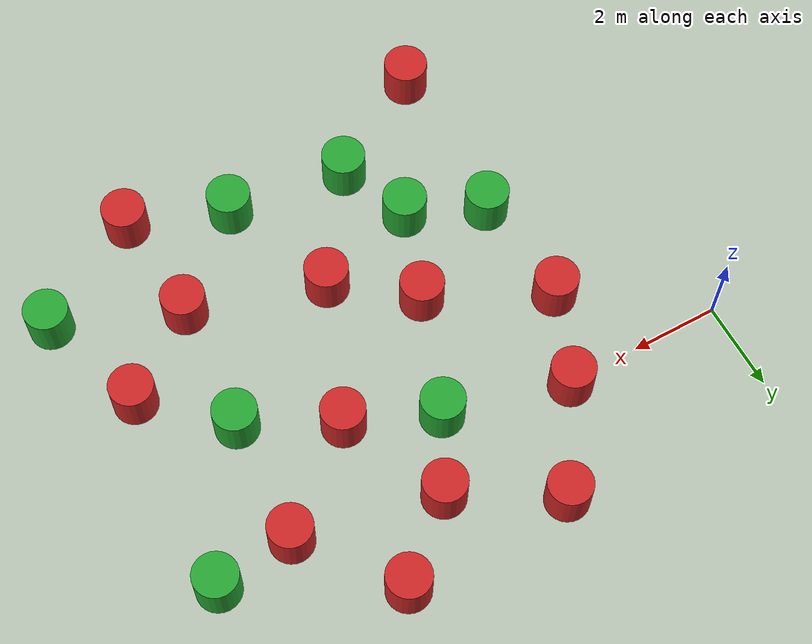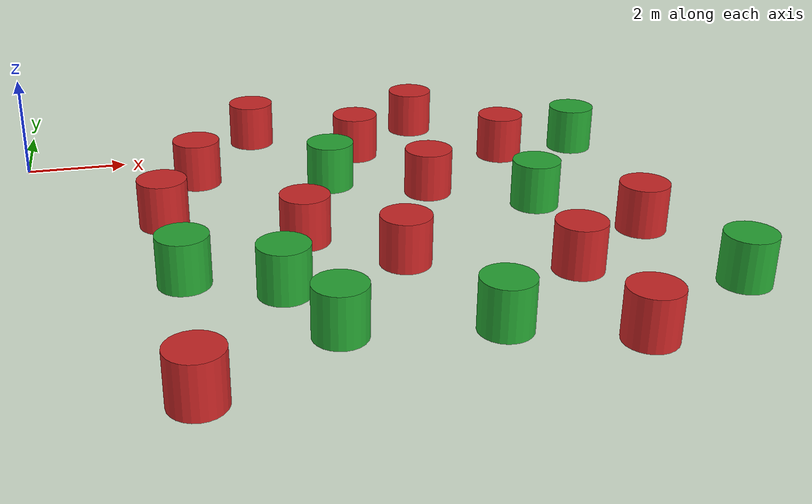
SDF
<sdf version="1.7">
 <model name="Astar_Dij_test.world">
  <link name="link_0">
   <inertial>
    <mass>20</mass>
    <inertia><ixx>2.91667</ixx><ixy>0</ixy><ixz>0</ixz><iyy>2.91667</iyy><iyz>0</iyz><izz>2.5</izz></inertia>
   </inertial>
   <pose>3.54109 -0.119892 0 0 -0 0</pose>
   <visual name="visual">
    <geometry><cylinder><radius>0.5</radius><length>1</length></cylinder></geometry>
    <material>
     <lighting>1</lighting>
     <script><uri>file://media/materials/scripts/gazebo.material</uri><name>Gazebo/Red</name></script>
     <shader type="pixel"><normal_map>__default__</normal_map></shader>
     <ambient>1 0 0 1</ambient>
     <diffuse>1 0 0 1</diffuse>
     <specular>0.1 0.1 0.1 1</specular>
     <emissive>0 0 0 1</emissive>
    </material>
   </visual>
   <collision name="collision">
    <geometry><cylinder><radius>0.5</radius><length>1</length></cylinder></geometry>
    <surface>
     <friction>
      <ode><mu>1</mu><mu2>1</mu2><fdir1>0 0 0</fdir1><slip1>0</slip1><slip2>0</slip2></ode>
      <torsional>
       <coefficient>1</coefficient>
       <patch_radius>0</patch_radius>
       <surface_radius>0</surface_radius>
       <use_patch_radius>1</use_patch_radius>
       <ode><slip>0</slip></ode>
      </torsional>
     </friction>
     <bounce><restitution_coefficient>0</restitution_coefficient><threshold>1e+06</threshold></bounce>
     <contact>
      <collide_without_contact>0</collide_without_contact>
      <collide_without_contact_bitmask>1</collide_without_contact_bitmask>
      <collide_bitmask>1</collide_bitmask>
      <ode>
       <soft_cfm>0</soft_cfm>
       <soft_erp>0.2</soft_erp>
       <kp>1e+13</kp>
       <kd>1</kd>
       <max_vel>0.01</max_vel>
       <min_depth>0</min_depth>
      </ode>
      <bullet>
       <split_impulse>1</split_impulse>
       <split_impulse_penetration_threshold>-0.01</split_impulse_penetration_threshold>
       <soft_cfm>0</soft_cfm>
       <soft_erp>0.2</soft_erp>
       <kp>1e+13</kp>
       <kd>1</kd>
      </bullet>
     </contact>
    </surface>
   </collision>
  </link>
  <link name="link_0_clone">
   <inertial>
    <mass>20</mass>
    <inertia><ixx>2.91667</ixx><ixy>0</ixy><ixz>0</ixz><iyy>2.91667</iyy><iyz>0</iyz><izz>2.5</izz></inertia>
   </inertial>
   <pose>5.36627 -3.50187 0 0 -0 0</pose>
   <visual name="visual">
    <geometry><cylinder><radius>0.5</radius><length>1</length></cylinder></geometry>
    <material>
     <lighting>1</lighting>
     <script><uri>file://media/materials/scripts/gazebo.material</uri><name>Gazebo/Red</name></script>
     <shader type="pixel"><normal_map>__default__</normal_map></shader>
     <ambient>1 0 0 1</ambient>
     <diffuse>1 0 0 1</diffuse>
     <specular>0.1 0.1 0.1 1</specular>
     <emissive>0 0 0 1</emissive>
    </material>
   </visual>
   <collision name="collision">
    <geometry><cylinder><radius>0.5</radius><length>1</length></cylinder></geometry>
    <surface>
     <friction>
      <ode><mu>1</mu><mu2>1</mu2><fdir1>0 0 0</fdir1><slip1>0</slip1><slip2>0</slip2></ode>
      <torsional>
       <coefficient>1</coefficient>
       <patch_radius>0</patch_radius>
       <surface_radius>0</surface_radius>
       <use_patch_radius>1</use_patch_radius>
       <ode><slip>0</slip></ode>
      </torsional>
     </friction>
     <bounce><restitution_coefficient>0</restitution_coefficient><threshold>1e+06</threshold></bounce>
     <contact>
      <collide_without_contact>0</collide_without_contact>
      <collide_without_contact_bitmask>1</collide_without_contact_bitmask>
      <collide_bitmask>1</collide_bitmask>
      <ode>
       <soft_cfm>0</soft_cfm>
       <soft_erp>0.2</soft_erp>
       <kp>1e+13</kp>
       <kd>1</kd>
       <max_vel>0.01</max_vel>
       <min_depth>0</min_depth>
      </ode>
      <bullet>
       <split_impulse>1</split_impulse>
       <split_impulse_penetration_threshold>-0.01</split_impulse_penetration_threshold>
       <soft_cfm>0</soft_cfm>
       <soft_erp>0.2</soft_erp>
       <kp>1e+13</kp>
       <kd>1</kd>
      </bullet>
     </contact>
    </surface>
   </collision>
  </link>
  <link name="link_0_clone_0">
   <inertial>
    <mass>20</mass>
    <inertia><ixx>2.91667</ixx><ixy>0</ixy><ixz>0</ixz><iyy>2.91667</iyy><iyz>0</iyz><izz>2.5</izz></inertia>
   </inertial>
   <pose>7.05149 -4.8226 0 0 -0 0</pose>
   <visual name="visual">
    <geometry><cylinder><radius>0.5</radius><length>1</length></cylinder></geometry>
    <material>
     <lighting>1</lighting>
     <script><uri>file://media/materials/scripts/gazebo.material</uri><name>Gazebo/Red</name></script>
     <shader type="pixel"><normal_map>__default__</normal_map></shader>
     <ambient>1 0 0 1</ambient>
     <diffuse>1 0 0 1</diffuse>
     <specular>0.1 0.1 0.1 1</specular>
     <emissive>0 0 0 1</emissive>
    </material>
   </visual>
   <collision name="collision">
    <geometry><cylinder><radius>0.5</radius><length>1</length></cylinder></geometry>
    <surface>
     <friction>
      <ode><mu>1</mu><mu2>1</mu2><fdir1>0 0 0</fdir1><slip1>0</slip1><slip2>0</slip2></ode>
      <torsional>
       <coefficient>1</coefficient>
       <patch_radius>0</patch_radius>
       <surface_radius>0</surface_radius>
       <use_patch_radius>1</use_patch_radius>
       <ode><slip>0</slip></ode>
      </torsional>
     </friction>
     <bounce><restitution_coefficient>0</restitution_coefficient><threshold>1e+06</threshold></bounce>
     <contact>
      <collide_without_contact>0</collide_without_contact>
      <collide_without_contact_bitmask>1</collide_without_contact_bitmask>
      <collide_bitmask>1</collide_bitmask>
      <ode>
       <soft_cfm>0</soft_cfm>
       <soft_erp>0.2</soft_erp>
       <kp>1e+13</kp>
       <kd>1</kd>
       <max_vel>0.01</max_vel>
       <min_depth>0</min_depth>
      </ode>
      <bullet>
       <split_impulse>1</split_impulse>
       <split_impulse_penetration_threshold>-0.01</split_impulse_penetration_threshold>
       <soft_cfm>0</soft_cfm>
       <soft_erp>0.2</soft_erp>
       <kp>1e+13</kp>
       <kd>1</kd>
      </bullet>
     </contact>
    </surface>
   </collision>
  </link>
  <link name="link_0_clone_1">
   <inertial>
    <mass>20</mass>
    <inertia><ixx>2.91667</ixx><ixy>0</ixy><ixz>0</ixz><iyy>2.91667</iyy><iyz>0</iyz><izz>2.5</izz></inertia>
   </inertial>
   <pose>8.3259 -1.65884 0 0 -0 0</pose>
   <visual name="visual">
    <geometry><cylinder><radius>0.5</radius><length>1</length></cylinder></geometry>
    <material>
     <lighting>1</lighting>
     <script><uri>file://media/materials/scripts/gazebo.material</uri><name>Gazebo/Red</name></script>
     <shader type="pixel"><normal_map>__default__</normal_map></shader>
     <ambient>1 0 0 1</ambient>
     <diffuse>1 0 0 1</diffuse>
     <specular>0.1 0.1 0.1 1</specular>
     <emissive>0 0 0 1</emissive>
    </material>
   </visual>
   <collision name="collision">
    <geometry><cylinder><radius>0.5</radius><length>1</length></cylinder></geometry>
    <surface>
     <friction>
      <ode><mu>1</mu><mu2>1</mu2><fdir1>0 0 0</fdir1><slip1>0</slip1><slip2>0</slip2></ode>
      <torsional>
       <coefficient>1</coefficient>
       <patch_radius>0</patch_radius>
       <surface_radius>0</surface_radius>
       <use_patch_radius>1</use_patch_radius>
       <ode><slip>0</slip></ode>
      </torsional>
     </friction>
     <bounce><restitution_coefficient>0</restitution_coefficient><threshold>1e+06</threshold></bounce>
     <contact>
      <collide_without_contact>0</collide_without_contact>
      <collide_without_contact_bitmask>1</collide_without_contact_bitmask>
      <collide_bitmask>1</collide_bitmask>
      <ode>
       <soft_cfm>0</soft_cfm>
       <soft_erp>0.2</soft_erp>
       <kp>1e+13</kp>
       <kd>1</kd>
       <max_vel>0.01</max_vel>
       <min_depth>0</min_depth>
      </ode>
      <bullet>
       <split_impulse>1</split_impulse>
       <split_impulse_penetration_threshold>-0.01</split_impulse_penetration_threshold>
       <soft_cfm>0</soft_cfm>
       <soft_erp>0.2</soft_erp>
       <kp>1e+13</kp>
       <kd>1</kd>
      </bullet>
     </contact>
    </surface>
   </collision>
  </link>
  <link name="link_0_clone_10">
   <inertial>
    <mass>20</mass>
    <inertia><ixx>2.91667</ixx><ixy>0</ixy><ixz>0</ixz><iyy>2.91667</iyy><iyz>0</iyz><izz>2.5</izz></inertia>
   </inertial>
   <pose>12.0197 -4.31509 0 0 -0 0</pose>
   <visual name="visual">
    <geometry><cylinder><radius>0.5</radius><length>1</length></cylinder></geometry>
    <material>
     <lighting>1</lighting>
     <script><uri>file://media/materials/scripts/gazebo.material</uri><name>Gazebo/Red</name></script>
     <shader type="pixel"><normal_map>__default__</normal_map></shader>
     <ambient>1 0 0 1</ambient>
     <diffuse>1 0 0 1</diffuse>
     <specular>0.1 0.1 0.1 1</specular>
     <emissive>0 0 0 1</emissive>
    </material>
   </visual>
   <collision name="collision">
    <geometry><cylinder><radius>0.5</radius><length>1</length></cylinder></geometry>
    <surface>
     <friction>
      <ode><mu>1</mu><mu2>1</mu2><fdir1>0 0 0</fdir1><slip1>0</slip1><slip2>0</slip2></ode>
      <torsional>
       <coefficient>1</coefficient>
       <patch_radius>0</patch_radius>
       <surface_radius>0</surface_radius>
       <use_patch_radius>1</use_patch_radius>
       <ode><slip>0</slip></ode>
      </torsional>
     </friction>
     <bounce><restitution_coefficient>0</restitution_coefficient><threshold>1e+06</threshold></bounce>
     <contact>
      <collide_without_contact>0</collide_without_contact>
      <collide_without_contact_bitmask>1</collide_without_contact_bitmask>
      <collide_bitmask>1</collide_bitmask>
      <ode>
       <soft_cfm>0</soft_cfm>
       <soft_erp>0.2</soft_erp>
       <kp>1e+13</kp>
       <kd>1</kd>
       <max_vel>0.01</max_vel>
       <min_depth>0</min_depth>
      </ode>
      <bullet>
       <split_impulse>1</split_impulse>
       <split_impulse_penetration_threshold>-0.01</split_impulse_penetration_threshold>
       <soft_cfm>0</soft_cfm>
       <soft_erp>0.2</soft_erp>
       <kp>1e+13</kp>
       <kd>1</kd>
      </bullet>
     </contact>
    </surface>
   </collision>
  </link>
  <link name="link_0_clone_14">
   <inertial>
    <mass>20</mass>
    <inertia><ixx>2.91667</ixx><ixy>0</ixy><ixz>0</ixz><iyy>2.91667</iyy><iyz>0</iyz><izz>2.5</izz></inertia>
   </inertial>
   <pose>2.70846 -2.17544 0 0 -0 0</pose>
   <visual name="visual">
    <geometry><cylinder><radius>0.5</radius><length>1</length></cylinder></geometry>
    <material>
     <lighting>1</lighting>
     <script><uri>file://media/materials/scripts/gazebo.material</uri><name>Gazebo/Red</name></script>
     <shader type="pixel"><normal_map>__default__</normal_map></shader>
     <ambient>1 0 0 1</ambient>
     <diffuse>1 0 0 1</diffuse>
     <specular>0.1 0.1 0.1 1</specular>
     <emissive>0 0 0 1</emissive>
    </material>
   </visual>
   <collision name="collision">
    <geometry><cylinder><radius>0.5</radius><length>1</length></cylinder></geometry>
    <surface>
     <friction>
      <ode><mu>1</mu><mu2>1</mu2><fdir1>0 0 0</fdir1><slip1>0</slip1><slip2>0</slip2></ode>
      <torsional>
       <coefficient>1</coefficient>
       <patch_radius>0</patch_radius>
       <surface_radius>0</surface_radius>
       <use_patch_radius>1</use_patch_radius>
       <ode><slip>0</slip></ode>
      </torsional>
     </friction>
     <bounce><restitution_coefficient>0</restitution_coefficient><threshold>1e+06</threshold></bounce>
     <contact>
      <collide_without_contact>0</collide_without_contact>
      <collide_without_contact_bitmask>1</collide_without_contact_bitmask>
      <collide_bitmask>1</collide_bitmask>
      <ode>
       <soft_cfm>0</soft_cfm>
       <soft_erp>0.2</soft_erp>
       <kp>1e+13</kp>
       <kd>1</kd>
       <max_vel>0.01</max_vel>
       <min_depth>0</min_depth>
      </ode>
      <bullet>
       <split_impulse>1</split_impulse>
       <split_impulse_penetration_threshold>-0.01</split_impulse_penetration_threshold>
       <soft_cfm>0</soft_cfm>
       <soft_erp>0.2</soft_erp>
       <kp>1e+13</kp>
       <kd>1</kd>
      </bullet>
     </contact>
    </surface>
   </collision>
  </link>
  <link name="link_0_clone_17">
   <inertial>
    <mass>20</mass>
    <inertia><ixx>2.91667</ixx><ixy>0</ixy><ixz>0</ixz><iyy>2.91667</iyy><iyz>0</iyz><izz>2.5</izz></inertia>
   </inertial>
   <pose>2.87315 -8.73364 0 0 -0 0</pose>
   <visual name="visual">
    <geometry><cylinder><radius>0.5</radius><length>1</length></cylinder></geometry>
    <material>
     <lighting>1</lighting>
     <script><uri>file://media/materials/scripts/gazebo.material</uri><name>Gazebo/Red</name></script>
     <shader type="pixel"><normal_map>__default__</normal_map></shader>
     <ambient>1 0 0 1</ambient>
     <diffuse>1 0 0 1</diffuse>
     <specular>0.1 0.1 0.1 1</specular>
     <emissive>0 0 0 1</emissive>
    </material>
   </visual>
   <collision name="collision">
    <geometry><cylinder><radius>0.5</radius><length>1</length></cylinder></geometry>
    <surface>
     <friction>
      <ode><mu>1</mu><mu2>1</mu2><fdir1>0 0 0</fdir1><slip1>0</slip1><slip2>0</slip2></ode>
      <torsional>
       <coefficient>1</coefficient>
       <patch_radius>0</patch_radius>
       <surface_radius>0</surface_radius>
       <use_patch_radius>1</use_patch_radius>
       <ode><slip>0</slip></ode>
      </torsional>
     </friction>
     <bounce><restitution_coefficient>0</restitution_coefficient><threshold>1e+06</threshold></bounce>
     <contact>
      <collide_without_contact>0</collide_without_contact>
      <collide_without_contact_bitmask>1</collide_without_contact_bitmask>
      <collide_bitmask>1</collide_bitmask>
      <ode>
       <soft_cfm>0</soft_cfm>
       <soft_erp>0.2</soft_erp>
       <kp>1e+13</kp>
       <kd>1</kd>
       <max_vel>0.01</max_vel>
       <min_depth>0</min_depth>
      </ode>
      <bullet>
       <split_impulse>1</split_impulse>
       <split_impulse_penetration_threshold>-0.01</split_impulse_penetration_threshold>
       <soft_cfm>0</soft_cfm>
       <soft_erp>0.2</soft_erp>
       <kp>1e+13</kp>
       <kd>1</kd>
      </bullet>
     </contact>
    </surface>
   </collision>
  </link>
  <link name="link_0_clone_19">
   <inertial>
    <mass>20</mass>
    <inertia><ixx>2.91667</ixx><ixy>0</ixy><ixz>0</ixz><iyy>2.91667</iyy><iyz>0</iyz><izz>2.5</izz></inertia>
   </inertial>
   <pose>4.98594 2.10137 0 0 -0 0</pose>
   <visual name="visual">
    <geometry><cylinder><radius>0.5</radius><length>1</length></cylinder></geometry>
    <material>
     <lighting>1</lighting>
     <script><uri>file://media/materials/scripts/gazebo.material</uri><name>Gazebo/Red</name></script>
     <shader type="pixel"><normal_map>__default__</normal_map></shader>
     <ambient>1 0 0 1</ambient>
     <diffuse>1 0 0 1</diffuse>
     <specular>0.1 0.1 0.1 1</specular>
     <emissive>0 0 0 1</emissive>
    </material>
   </visual>
   <collision name="collision">
    <geometry><cylinder><radius>0.5</radius><length>1</length></cylinder></geometry>
    <surface>
     <friction>
      <ode><mu>1</mu><mu2>1</mu2><fdir1>0 0 0</fdir1><slip1>0</slip1><slip2>0</slip2></ode>
      <torsional>
       <coefficient>1</coefficient>
       <patch_radius>0</patch_radius>
       <surface_radius>0</surface_radius>
       <use_patch_radius>1</use_patch_radius>
       <ode><slip>0</slip></ode>
      </torsional>
     </friction>
     <bounce><restitution_coefficient>0</restitution_coefficient><threshold>1e+06</threshold></bounce>
     <contact>
      <collide_without_contact>0</collide_without_contact>
      <collide_without_contact_bitmask>1</collide_without_contact_bitmask>
      <collide_bitmask>1</collide_bitmask>
      <ode>
       <soft_cfm>0</soft_cfm>
       <soft_erp>0.2</soft_erp>
       <kp>1e+13</kp>
       <kd>1</kd>
       <max_vel>0.01</max_vel>
       <min_depth>0</min_depth>
      </ode>
      <bullet>
       <split_impulse>1</split_impulse>
       <split_impulse_penetration_threshold>-0.01</split_impulse_penetration_threshold>
       <soft_cfm>0</soft_cfm>
       <soft_erp>0.2</soft_erp>
       <kp>1e+13</kp>
       <kd>1</kd>
      </bullet>
     </contact>
    </surface>
   </collision>
  </link>
  <link name="link_0_clone_20">
   <inertial>
    <mass>20</mass>
    <inertia><ixx>2.91667</ixx><ixy>0</ixy><ixz>0</ixz><iyy>2.91667</iyy><iyz>0</iyz><izz>2.5</izz></inertia>
   </inertial>
   <pose>7.23174 0.796534 0 0 -0 0</pose>
   <visual name="visual">
    <geometry><cylinder><radius>0.5</radius><length>1</length></cylinder></geometry>
    <material>
     <lighting>1</lighting>
     <script><uri>file://media/materials/scripts/gazebo.material</uri><name>Gazebo/Red</name></script>
     <shader type="pixel"><normal_map>__default__</normal_map></shader>
     <ambient>1 0 0 1</ambient>
     <diffuse>1 0 0 1</diffuse>
     <specular>0.1 0.1 0.1 1</specular>
     <emissive>0 0 0 1</emissive>
    </material>
   </visual>
   <collision name="collision">
    <geometry><cylinder><radius>0.5</radius><length>1</length></cylinder></geometry>
    <surface>
     <friction>
      <ode><mu>1</mu><mu2>1</mu2><fdir1>0 0 0</fdir1><slip1>0</slip1><slip2>0</slip2></ode>
      <torsional>
       <coefficient>1</coefficient>
       <patch_radius>0</patch_radius>
       <surface_radius>0</surface_radius>
       <use_patch_radius>1</use_patch_radius>
       <ode><slip>0</slip></ode>
      </torsional>
     </friction>
     <bounce><restitution_coefficient>0</restitution_coefficient><threshold>1e+06</threshold></bounce>
     <contact>
      <collide_without_contact>0</collide_without_contact>
      <collide_without_contact_bitmask>1</collide_without_contact_bitmask>
      <collide_bitmask>1</collide_bitmask>
      <ode>
       <soft_cfm>0</soft_cfm>
       <soft_erp>0.2</soft_erp>
       <kp>1e+13</kp>
       <kd>1</kd>
       <max_vel>0.01</max_vel>
       <min_depth>0</min_depth>
      </ode>
      <bullet>
       <split_impulse>1</split_impulse>
       <split_impulse_penetration_threshold>-0.01</split_impulse_penetration_threshold>
       <soft_cfm>0</soft_cfm>
       <soft_erp>0.2</soft_erp>
       <kp>1e+13</kp>
       <kd>1</kd>
      </bullet>
     </contact>
    </surface>
   </collision>
  </link>
  <link name="link_0_clone_4">
   <inertial>
    <mass>20</mass>
    <inertia><ixx>2.91667</ixx><ixy>0</ixy><ixz>0</ixz><iyy>2.91667</iyy><iyz>0</iyz><izz>2.5</izz></inertia>
   </inertial>
   <pose>8.88155 2.22109 0 0 -0 0</pose>
   <visual name="visual">
    <geometry><cylinder><radius>0.5</radius><length>1</length></cylinder></geometry>
    <material>
     <lighting>1</lighting>
     <script><uri>file://media/materials/scripts/gazebo.material</uri><name>Gazebo/Red</name></script>
     <shader type="pixel"><normal_map>__default__</normal_map></shader>
     <ambient>1 0 0 1</ambient>
     <diffuse>1 0 0 1</diffuse>
     <specular>0.1 0.1 0.1 1</specular>
     <emissive>0 0 0 1</emissive>
    </material>
   </visual>
   <collision name="collision">
    <geometry><cylinder><radius>0.5</radius><length>1</length></cylinder></geometry>
    <surface>
     <friction>
      <ode><mu>1</mu><mu2>1</mu2><fdir1>0 0 0</fdir1><slip1>0</slip1><slip2>0</slip2></ode>
      <torsional>
       <coefficient>1</coefficient>
       <patch_radius>0</patch_radius>
       <surface_radius>0</surface_radius>
       <use_patch_radius>1</use_patch_radius>
       <ode><slip>0</slip></ode>
      </torsional>
     </friction>
     <bounce><restitution_coefficient>0</restitution_coefficient><threshold>1e+06</threshold></bounce>
     <contact>
      <collide_without_contact>0</collide_without_contact>
      <collide_without_contact_bitmask>1</collide_without_contact_bitmask>
      <collide_bitmask>1</collide_bitmask>
      <ode>
       <soft_cfm>0</soft_cfm>
       <soft_erp>0.2</soft_erp>
       <kp>1e+13</kp>
       <kd>1</kd>
       <max_vel>0.01</max_vel>
       <min_depth>0</min_depth>
      </ode>
      <bullet>
       <split_impulse>1</split_impulse>
       <split_impulse_penetration_threshold>-0.01</split_impulse_penetration_threshold>
       <soft_cfm>0</soft_cfm>
       <soft_erp>0.2</soft_erp>
       <kp>1e+13</kp>
       <kd>1</kd>
      </bullet>
     </contact>
    </surface>
   </collision>
  </link>
  <link name="link_0_clone_5">
   <inertial>
    <mass>20</mass>
    <inertia><ixx>2.91667</ixx><ixy>0</ixy><ixz>0</ixz><iyy>2.91667</iyy><iyz>0</iyz><izz>2.5</izz></inertia>
   </inertial>
   <pose>10.4978 0.118434 0 0 -0 0</pose>
   <visual name="visual">
    <geometry><cylinder><radius>0.5</radius><length>1</length></cylinder></geometry>
    <material>
     <lighting>1</lighting>
     <script><uri>file://media/materials/scripts/gazebo.material</uri><name>Gazebo/Red</name></script>
     <shader type="pixel"><normal_map>__default__</normal_map></shader>
     <ambient>1 0 0 1</ambient>
     <diffuse>1 0 0 1</diffuse>
     <specular>0.1 0.1 0.1 1</specular>
     <emissive>0 0 0 1</emissive>
    </material>
   </visual>
   <collision name="collision">
    <geometry><cylinder><radius>0.5</radius><length>1</length></cylinder></geometry>
    <surface>
     <friction>
      <ode><mu>1</mu><mu2>1</mu2><fdir1>0 0 0</fdir1><slip1>0</slip1><slip2>0</slip2></ode>
      <torsional>
       <coefficient>1</coefficient>
       <patch_radius>0</patch_radius>
       <surface_radius>0</surface_radius>
       <use_patch_radius>1</use_patch_radius>
       <ode><slip>0</slip></ode>
      </torsional>
     </friction>
     <bounce><restitution_coefficient>0</restitution_coefficient><threshold>1e+06</threshold></bounce>
     <contact>
      <collide_without_contact>0</collide_without_contact>
      <collide_without_contact_bitmask>1</collide_without_contact_bitmask>
      <collide_bitmask>1</collide_bitmask>
      <ode>
       <soft_cfm>0</soft_cfm>
       <soft_erp>0.2</soft_erp>
       <kp>1e+13</kp>
       <kd>1</kd>
       <max_vel>0.01</max_vel>
       <min_depth>0</min_depth>
      </ode>
      <bullet>
       <split_impulse>1</split_impulse>
       <split_impulse_penetration_threshold>-0.01</split_impulse_penetration_threshold>
       <soft_cfm>0</soft_cfm>
       <soft_erp>0.2</soft_erp>
       <kp>1e+13</kp>
       <kd>1</kd>
      </bullet>
     </contact>
    </surface>
   </collision>
  </link>
  <link name="link_0_clone_6">
   <inertial>
    <mass>20</mass>
    <inertia><ixx>2.91667</ixx><ixy>0</ixy><ixz>0</ixz><iyy>2.91667</iyy><iyz>0</iyz><izz>2.5</izz></inertia>
   </inertial>
   <pose>10.1266 -5.74101 0 0 -0 0</pose>
   <visual name="visual">
    <geometry><cylinder><radius>0.5</radius><length>1</length></cylinder></geometry>
    <material>
     <lighting>1</lighting>
     <script><uri>file://media/materials/scripts/gazebo.material</uri><name>Gazebo/Red</name></script>
     <shader type="pixel"><normal_map>__default__</normal_map></shader>
     <ambient>1 0 0 1</ambient>
     <diffuse>1 0 0 1</diffuse>
     <specular>0.1 0.1 0.1 1</specular>
     <emissive>0 0 0 1</emissive>
    </material>
   </visual>
   <collision name="collision">
    <geometry><cylinder><radius>0.5</radius><length>1</length></cylinder></geometry>
    <surface>
     <friction>
      <ode><mu>1</mu><mu2>1</mu2><fdir1>0 0 0</fdir1><slip1>0</slip1><slip2>0</slip2></ode>
      <torsional>
       <coefficient>1</coefficient>
       <patch_radius>0</patch_radius>
       <surface_radius>0</surface_radius>
       <use_patch_radius>1</use_patch_radius>
       <ode><slip>0</slip></ode>
      </torsional>
     </friction>
     <bounce><restitution_coefficient>0</restitution_coefficient><threshold>1e+06</threshold></bounce>
     <contact>
      <collide_without_contact>0</collide_without_contact>
      <collide_without_contact_bitmask>1</collide_without_contact_bitmask>
      <collide_bitmask>1</collide_bitmask>
      <ode>
       <soft_cfm>0</soft_cfm>
       <soft_erp>0.2</soft_erp>
       <kp>1e+13</kp>
       <kd>1</kd>
       <max_vel>0.01</max_vel>
       <min_depth>0</min_depth>
      </ode>
      <bullet>
       <split_impulse>1</split_impulse>
       <split_impulse_penetration_threshold>-0.01</split_impulse_penetration_threshold>
       <soft_cfm>0</soft_cfm>
       <soft_erp>0.2</soft_erp>
       <kp>1e+13</kp>
       <kd>1</kd>
      </bullet>
     </contact>
    </surface>
   </collision>
  </link>
  <link name="link_0_clone_7">
   <inertial>
    <mass>20</mass>
    <inertia><ixx>2.91667</ixx><ixy>0</ixy><ixz>0</ixz><iyy>2.91667</iyy><iyz>0</iyz><izz>2.5</izz></inertia>
   </inertial>
   <pose>10.3373 -8.36463 0 0 -0 0</pose>
   <visual name="visual">
    <geometry><cylinder><radius>0.5</radius><length>1</length></cylinder></geometry>
    <material>
     <lighting>1</lighting>
     <script><uri>file://media/materials/scripts/gazebo.material</uri><name>Gazebo/Red</name></script>
     <shader type="pixel"><normal_map>__default__</normal_map></shader>
     <ambient>1 0 0 1</ambient>
     <diffuse>1 0 0 1</diffuse>
     <specular>0.1 0.1 0.1 1</specular>
     <emissive>0 0 0 1</emissive>
    </material>
   </visual>
   <collision name="collision">
    <geometry><cylinder><radius>0.5</radius><length>1</length></cylinder></geometry>
    <surface>
     <friction>
      <ode><mu>1</mu><mu2>1</mu2><fdir1>0 0 0</fdir1><slip1>0</slip1><slip2>0</slip2></ode>
      <torsional>
       <coefficient>1</coefficient>
       <patch_radius>0</patch_radius>
       <surface_radius>0</surface_radius>
       <use_patch_radius>1</use_patch_radius>
       <ode><slip>0</slip></ode>
      </torsional>
     </friction>
     <bounce><restitution_coefficient>0</restitution_coefficient><threshold>1e+06</threshold></bounce>
     <contact>
      <collide_without_contact>0</collide_without_contact>
      <collide_without_contact_bitmask>1</collide_without_contact_bitmask>
      <collide_bitmask>1</collide_bitmask>
      <ode>
       <soft_cfm>0</soft_cfm>
       <soft_erp>0.2</soft_erp>
       <kp>1e+13</kp>
       <kd>1</kd>
       <max_vel>0.01</max_vel>
       <min_depth>0</min_depth>
      </ode>
      <bullet>
       <split_impulse>1</split_impulse>
       <split_impulse_penetration_threshold>-0.01</split_impulse_penetration_threshold>
       <soft_cfm>0</soft_cfm>
       <soft_erp>0.2</soft_erp>
       <kp>1e+13</kp>
       <kd>1</kd>
      </bullet>
     </contact>
    </surface>
   </collision>
  </link>
  <link name="link_clone_1">
   <inertial>
    <mass>20</mass>
    <inertia><ixx>2.91667</ixx><ixy>0</ixy><ixz>0</ixz><iyy>2.91667</iyy><iyz>0</iyz><izz>2.5</izz></inertia>
   </inertial>
   <pose>2.93675 -4.81886 0 0 -0 0</pose>
   <visual name="visual">
    <geometry><cylinder><radius>0.5</radius><length>1</length></cylinder></geometry>
    <material>
     <script><name>Gazebo/Green</name><uri>file://media/materials/scripts/gazebo.material</uri></script>
     <shader type="pixel"><normal_map>__default__</normal_map></shader>
     <ambient>0 1 0 1</ambient>
     <diffuse>0 1 0 1</diffuse>
     <specular>0.1 0.1 0.1 1</specular>
     <emissive>0 0 0 1</emissive>
    </material>
   </visual>
   <collision name="collision">
    <geometry><cylinder><radius>0.5</radius><length>1</length></cylinder></geometry>
    <surface>
     <friction>
      <ode><mu>1</mu><mu2>1</mu2><fdir1>0 0 0</fdir1><slip1>0</slip1><slip2>0</slip2></ode>
      <torsional>
       <coefficient>1</coefficient>
       <patch_radius>0</patch_radius>
       <surface_radius>0</surface_radius>
       <use_patch_radius>1</use_patch_radius>
       <ode><slip>0</slip></ode>
      </torsional>
     </friction>
     <bounce><restitution_coefficient>0</restitution_coefficient><threshold>1e+06</threshold></bounce>
     <contact>
      <collide_without_contact>0</collide_without_contact>
      <collide_without_contact_bitmask>1</collide_without_contact_bitmask>
      <collide_bitmask>1</collide_bitmask>
      <ode>
       <soft_cfm>0</soft_cfm>
       <soft_erp>0.2</soft_erp>
       <kp>1e+13</kp>
       <kd>1</kd>
       <max_vel>0.01</max_vel>
       <min_depth>0</min_depth>
      </ode>
      <bullet>
       <split_impulse>1</split_impulse>
       <split_impulse_penetration_threshold>-0.01</split_impulse_penetration_threshold>
       <soft_cfm>0</soft_cfm>
       <soft_erp>0.2</soft_erp>
       <kp>1e+13</kp>
       <kd>1</kd>
      </bullet>
     </contact>
    </surface>
   </collision>
  </link>
  <link name="link_clone_10">
   <inertial>
    <mass>20</mass>
    <inertia><ixx>2.91667</ixx><ixy>0</ixy><ixz>0</ixz><iyy>2.91667</iyy><iyz>0</iyz><izz>2.5</izz></inertia>
   </inertial>
   <pose>10.3463 -2.74345 0 0 -0 0</pose>
   <visual name="visual">
    <geometry><cylinder><radius>0.5</radius><length>1</length></cylinder></geometry>
    <material>
     <script><name>Gazebo/Green</name><uri>file://media/materials/scripts/gazebo.material</uri></script>
     <shader type="pixel"><normal_map>__default__</normal_map></shader>
     <ambient>0 1 0 1</ambient>
     <diffuse>0 1 0 1</diffuse>
     <specular>0.1 0.1 0.1 1</specular>
     <emissive>0 0 0 1</emissive>
    </material>
   </visual>
   <collision name="collision">
    <geometry><cylinder><radius>0.5</radius><length>1</length></cylinder></geometry>
    <surface>
     <friction>
      <ode><mu>1</mu><mu2>1</mu2><fdir1>0 0 0</fdir1><slip1>0</slip1><slip2>0</slip2></ode>
      <torsional>
       <coefficient>1</coefficient>
       <patch_radius>0</patch_radius>
       <surface_radius>0</surface_radius>
       <use_patch_radius>1</use_patch_radius>
       <ode><slip>0</slip></ode>
      </torsional>
     </friction>
     <bounce><restitution_coefficient>0</restitution_coefficient><threshold>1e+06</threshold></bounce>
     <contact>
      <collide_without_contact>0</collide_without_contact>
      <collide_without_contact_bitmask>1</collide_without_contact_bitmask>
      <collide_bitmask>1</collide_bitmask>
      <ode>
       <soft_cfm>0</soft_cfm>
       <soft_erp>0.2</soft_erp>
       <kp>1e+13</kp>
       <kd>1</kd>
       <max_vel>0.01</max_vel>
       <min_depth>0</min_depth>
      </ode>
      <bullet>
       <split_impulse>1</split_impulse>
       <split_impulse_penetration_threshold>-0.01</split_impulse_penetration_threshold>
       <soft_cfm>0</soft_cfm>
       <soft_erp>0.2</soft_erp>
       <kp>1e+13</kp>
       <kd>1</kd>
      </bullet>
     </contact>
    </surface>
   </collision>
  </link>
  <link name="link_clone_11">
   <inertial>
    <mass>20</mass>
    <inertia><ixx>2.91667</ixx><ixy>0</ixy><ixz>0</ixz><iyy>2.91667</iyy><iyz>0</iyz><izz>2.5</izz></inertia>
   </inertial>
   <pose>8.1048 -7.56167 0 0 -0 0</pose>
   <visual name="visual">
    <geometry><cylinder><radius>0.5</radius><length>1</length></cylinder></geometry>
    <material>
     <script><name>Gazebo/Green</name><uri>file://media/materials/scripts/gazebo.material</uri></script>
     <shader type="pixel"><normal_map>__default__</normal_map></shader>
     <ambient>0 1 0 1</ambient>
     <diffuse>0 1 0 1</diffuse>
     <specular>0.1 0.1 0.1 1</specular>
     <emissive>0 0 0 1</emissive>
    </material>
   </visual>
   <collision name="collision">
    <geometry><cylinder><radius>0.5</radius><length>1</length></cylinder></geometry>
    <surface>
     <friction>
      <ode><mu>1</mu><mu2>1</mu2><fdir1>0 0 0</fdir1><slip1>0</slip1><slip2>0</slip2></ode>
      <torsional>
       <coefficient>1</coefficient>
       <patch_radius>0</patch_radius>
       <surface_radius>0</surface_radius>
       <use_patch_radius>1</use_patch_radius>
       <ode><slip>0</slip></ode>
      </torsional>
     </friction>
     <bounce><restitution_coefficient>0</restitution_coefficient><threshold>1e+06</threshold></bounce>
     <contact>
      <collide_without_contact>0</collide_without_contact>
      <collide_without_contact_bitmask>1</collide_without_contact_bitmask>
      <collide_bitmask>1</collide_bitmask>
      <ode>
       <soft_cfm>0</soft_cfm>
       <soft_erp>0.2</soft_erp>
       <kp>1e+13</kp>
       <kd>1</kd>
       <max_vel>0.01</max_vel>
       <min_depth>0</min_depth>
      </ode>
      <bullet>
       <split_impulse>1</split_impulse>
       <split_impulse_penetration_threshold>-0.01</split_impulse_penetration_threshold>
       <soft_cfm>0</soft_cfm>
       <soft_erp>0.2</soft_erp>
       <kp>1e+13</kp>
       <kd>1</kd>
      </bullet>
     </contact>
    </surface>
   </collision>
  </link>
  <link name="link_clone_12">
   <inertial>
    <mass>20</mass>
    <inertia><ixx>2.91667</ixx><ixy>0</ixy><ixz>0</ixz><iyy>2.91667</iyy><iyz>0</iyz><izz>2.5</izz></inertia>
   </inertial>
   <pose>6.3534 -0.83806 0 0 -0 0</pose>
   <visual name="visual">
    <geometry><cylinder><radius>0.5</radius><length>1</length></cylinder></geometry>
    <material>
     <script><name>Gazebo/Green</name><uri>file://media/materials/scripts/gazebo.material</uri></script>
     <shader type="pixel"><normal_map>__default__</normal_map></shader>
     <ambient>0 1 0 1</ambient>
     <diffuse>0 1 0 1</diffuse>
     <specular>0.1 0.1 0.1 1</specular>
     <emissive>0 0 0 1</emissive>
    </material>
   </visual>
   <collision name="collision">
    <geometry><cylinder><radius>0.5</radius><length>1</length></cylinder></geometry>
    <surface>
     <friction>
      <ode><mu>1</mu><mu2>1</mu2><fdir1>0 0 0</fdir1><slip1>0</slip1><slip2>0</slip2></ode>
      <torsional>
       <coefficient>1</coefficient>
       <patch_radius>0</patch_radius>
       <surface_radius>0</surface_radius>
       <use_patch_radius>1</use_patch_radius>
       <ode><slip>0</slip></ode>
      </torsional>
     </friction>
     <bounce><restitution_coefficient>0</restitution_coefficient><threshold>1e+06</threshold></bounce>
     <contact>
      <collide_without_contact>0</collide_without_contact>
      <collide_without_contact_bitmask>1</collide_without_contact_bitmask>
      <collide_bitmask>1</collide_bitmask>
      <ode>
       <soft_cfm>0</soft_cfm>
       <soft_erp>0.2</soft_erp>
       <kp>1e+13</kp>
       <kd>1</kd>
       <max_vel>0.01</max_vel>
       <min_depth>0</min_depth>
      </ode>
      <bullet>
       <split_impulse>1</split_impulse>
       <split_impulse_penetration_threshold>-0.01</split_impulse_penetration_threshold>
       <soft_cfm>0</soft_cfm>
       <soft_erp>0.2</soft_erp>
       <kp>1e+13</kp>
       <kd>1</kd>
      </bullet>
     </contact>
    </surface>
   </collision>
  </link>
  <link name="link_clone_13">
   <inertial>
    <mass>20</mass>
    <inertia><ixx>2.91667</ixx><ixy>0</ixy><ixz>0</ixz><iyy>2.91667</iyy><iyz>0</iyz><izz>2.5</izz></inertia>
   </inertial>
   <pose>5.34757 -7.21202 0 0 -0 0</pose>
   <visual name="visual">
    <geometry><cylinder><radius>0.5</radius><length>1</length></cylinder></geometry>
    <material>
     <script><name>Gazebo/Green</name><uri>file://media/materials/scripts/gazebo.material</uri></script>
     <shader type="pixel"><normal_map>__default__</normal_map></shader>
     <ambient>0 1 0 1</ambient>
     <diffuse>0 1 0 1</diffuse>
     <specular>0.1 0.1 0.1 1</specular>
     <emissive>0 0 0 1</emissive>
    </material>
   </visual>
   <collision name="collision">
    <geometry><cylinder><radius>0.5</radius><length>1</length></cylinder></geometry>
    <surface>
     <friction>
      <ode><mu>1</mu><mu2>1</mu2><fdir1>0 0 0</fdir1><slip1>0</slip1><slip2>0</slip2></ode>
      <torsional>
       <coefficient>1</coefficient>
       <patch_radius>0</patch_radius>
       <surface_radius>0</surface_radius>
       <use_patch_radius>1</use_patch_radius>
       <ode><slip>0</slip></ode>
      </torsional>
     </friction>
     <bounce><restitution_coefficient>0</restitution_coefficient><threshold>1e+06</threshold></bounce>
     <contact>
      <collide_without_contact>0</collide_without_contact>
      <collide_without_contact_bitmask>1</collide_without_contact_bitmask>
      <collide_bitmask>1</collide_bitmask>
      <ode>
       <soft_cfm>0</soft_cfm>
       <soft_erp>0.2</soft_erp>
       <kp>1e+13</kp>
       <kd>1</kd>
       <max_vel>0.01</max_vel>
       <min_depth>0</min_depth>
      </ode>
      <bullet>
       <split_impulse>1</split_impulse>
       <split_impulse_penetration_threshold>-0.01</split_impulse_penetration_threshold>
       <soft_cfm>0</soft_cfm>
       <soft_erp>0.2</soft_erp>
       <kp>1e+13</kp>
       <kd>1</kd>
      </bullet>
     </contact>
    </surface>
   </collision>
  </link>
  <link name="link_clone_4">
   <inertial>
    <mass>20</mass>
    <inertia><ixx>2.91667</ixx><ixy>0</ixy><ixz>0</ixz><iyy>2.91667</iyy><iyz>0</iyz><izz>2.5</izz></inertia>
   </inertial>
   <pose>12.2972 0.323097 0 0 -0 0</pose>
   <visual name="visual">
    <geometry><cylinder><radius>0.5</radius><length>1</length></cylinder></geometry>
    <material>
     <script><name>Gazebo/Green</name><uri>file://media/materials/scripts/gazebo.material</uri></script>
     <shader type="pixel"><normal_map>__default__</normal_map></shader>
     <ambient>0 1 0 1</ambient>
     <diffuse>0 1 0 1</diffuse>
     <specular>0.1 0.1 0.1 1</specular>
     <emissive>0 0 0 1</emissive>
    </material>
   </visual>
   <collision name="collision">
    <geometry><cylinder><radius>0.5</radius><length>1</length></cylinder></geometry>
    <surface>
     <friction>
      <ode><mu>1</mu><mu2>1</mu2><fdir1>0 0 0</fdir1><slip1>0</slip1><slip2>0</slip2></ode>
      <torsional>
       <coefficient>1</coefficient>
       <patch_radius>0</patch_radius>
       <surface_radius>0</surface_radius>
       <use_patch_radius>1</use_patch_radius>
       <ode><slip>0</slip></ode>
      </torsional>
     </friction>
     <bounce><restitution_coefficient>0</restitution_coefficient><threshold>1e+06</threshold></bounce>
     <contact>
      <collide_without_contact>0</collide_without_contact>
      <collide_without_contact_bitmask>1</collide_without_contact_bitmask>
      <collide_bitmask>1</collide_bitmask>
      <ode>
       <soft_cfm>0</soft_cfm>
       <soft_erp>0.2</soft_erp>
       <kp>1e+13</kp>
       <kd>1</kd>
       <max_vel>0.01</max_vel>
       <min_depth>0</min_depth>
      </ode>
      <bullet>
       <split_impulse>1</split_impulse>
       <split_impulse_penetration_threshold>-0.01</split_impulse_penetration_threshold>
       <soft_cfm>0</soft_cfm>
       <soft_erp>0.2</soft_erp>
       <kp>1e+13</kp>
       <kd>1</kd>
      </bullet>
     </contact>
    </surface>
   </collision>
  </link>
  <link name="link_clone_5">
   <inertial>
    <mass>20</mass>
    <inertia><ixx>2.91667</ixx><ixy>0</ixy><ixz>0</ixz><iyy>2.91667</iyy><iyz>0</iyz><izz>2.5</izz></inertia>
   </inertial>
   <pose>12.8873 -6.85098 0 0 -0 0</pose>
   <visual name="visual">
    <geometry><cylinder><radius>0.5</radius><length>1</length></cylinder></geometry>
    <material>
     <script><name>Gazebo/Green</name><uri>file://media/materials/scripts/gazebo.material</uri></script>
     <shader type="pixel"><normal_map>__default__</normal_map></shader>
     <ambient>0 1 0 1</ambient>
     <diffuse>0 1 0 1</diffuse>
     <specular>0.1 0.1 0.1 1</specular>
     <emissive>0 0 0 1</emissive>
    </material>
   </visual>
   <collision name="collision">
    <geometry><cylinder><radius>0.5</radius><length>1</length></cylinder></geometry>
    <surface>
     <friction>
      <ode><mu>1</mu><mu2>1</mu2><fdir1>0 0 0</fdir1><slip1>0</slip1><slip2>0</slip2></ode>
      <torsional>
       <coefficient>1</coefficient>
       <patch_radius>0</patch_radius>
       <surface_radius>0</surface_radius>
       <use_patch_radius>1</use_patch_radius>
       <ode><slip>0</slip></ode>
      </torsional>
     </friction>
     <bounce><restitution_coefficient>0</restitution_coefficient><threshold>1e+06</threshold></bounce>
     <contact>
      <collide_without_contact>0</collide_without_contact>
      <collide_without_contact_bitmask>1</collide_without_contact_bitmask>
      <collide_bitmask>1</collide_bitmask>
      <ode>
       <soft_cfm>0</soft_cfm>
       <soft_erp>0.2</soft_erp>
       <kp>1e+13</kp>
       <kd>1</kd>
       <max_vel>0.01</max_vel>
       <min_depth>0</min_depth>
      </ode>
      <bullet>
       <split_impulse>1</split_impulse>
       <split_impulse_penetration_threshold>-0.01</split_impulse_penetration_threshold>
       <soft_cfm>0</soft_cfm>
       <soft_erp>0.2</soft_erp>
       <kp>1e+13</kp>
       <kd>1</kd>
      </bullet>
     </contact>
    </surface>
   </collision>
  </link>
  <link name="link_clone_9_clone_6">
   <inertial>
    <mass>20</mass>
    <inertia><ixx>2.91667</ixx><ixy>0</ixy><ixz>0</ixz><iyy>2.91667</iyy><iyz>0</iyz><izz>2.5</izz></inertia>
   </inertial>
   <pose>4.65576 -5.56951 0 0 -0 0</pose>
   <visual name="visual">
    <geometry><cylinder><radius>0.5</radius><length>1</length></cylinder></geometry>
    <material>
     <script><name>Gazebo/Green</name><uri>file://media/materials/scripts/gazebo.material</uri></script>
     <shader type="pixel"><normal_map>__default__</normal_map></shader>
     <ambient>0 1 0 1</ambient>
     <diffuse>0 1 0 1</diffuse>
     <specular>0.1 0.1 0.1 1</specular>
     <emissive>0 0 0 1</emissive>
    </material>
   </visual>
   <collision name="collision">
    <geometry><cylinder><radius>0.5</radius><length>1</length></cylinder></geometry>
    <surface>
     <friction>
      <ode><mu>1</mu><mu2>1</mu2><fdir1>0 0 0</fdir1><slip1>0</slip1><slip2>0</slip2></ode>
      <torsional>
       <coefficient>1</coefficient>
       <patch_radius>0</patch_radius>
       <surface_radius>0</surface_radius>
       <use_patch_radius>1</use_patch_radius>
       <ode><slip>0</slip></ode>
      </torsional>
     </friction>
     <bounce><restitution_coefficient>0</restitution_coefficient><threshold>1e+06</threshold></bounce>
     <contact>
      <collide_without_contact>0</collide_without_contact>
      <collide_without_contact_bitmask>1</collide_without_contact_bitmask>
      <collide_bitmask>1</collide_bitmask>
      <ode>
       <soft_cfm>0</soft_cfm>
       <soft_erp>0.2</soft_erp>
       <kp>1e+13</kp>
       <kd>1</kd>
       <max_vel>0.01</max_vel>
       <min_depth>0</min_depth>
      </ode>
      <bullet>
       <split_impulse>1</split_impulse>
       <split_impulse_penetration_threshold>-0.01</split_impulse_penetration_threshold>
       <soft_cfm>0</soft_cfm>
       <soft_erp>0.2</soft_erp>
       <kp>1e+13</kp>
       <kd>1</kd>
      </bullet>
     </contact>
    </surface>
   </collision>
  </link>
  <static>0</static>
 </model>
</sdf>
